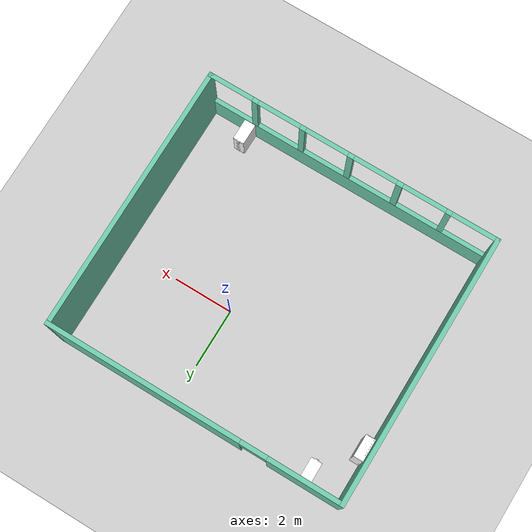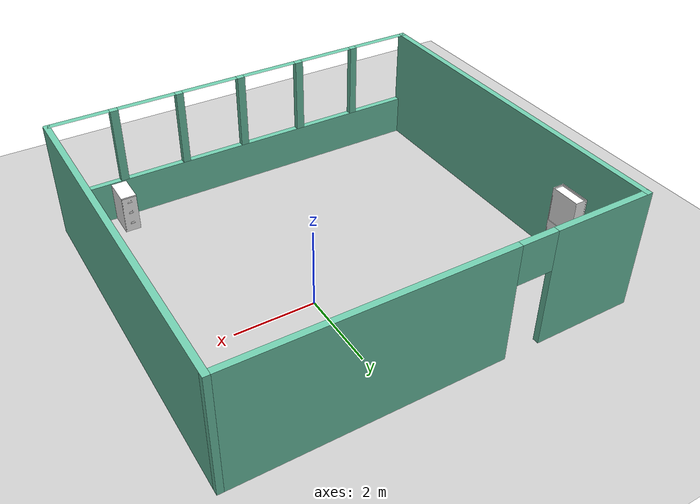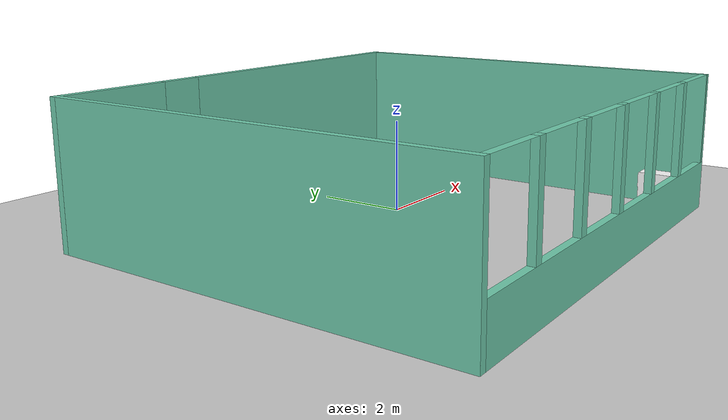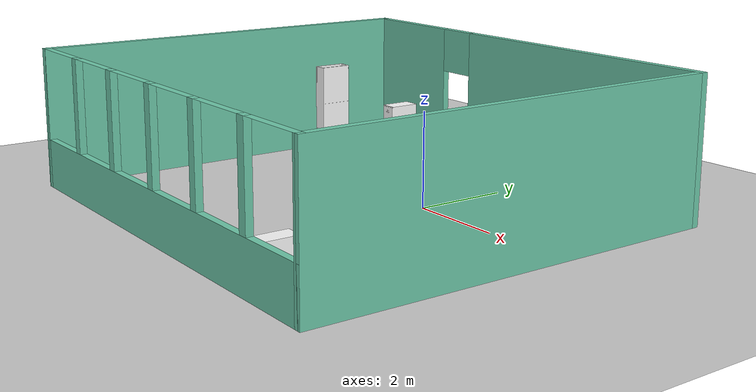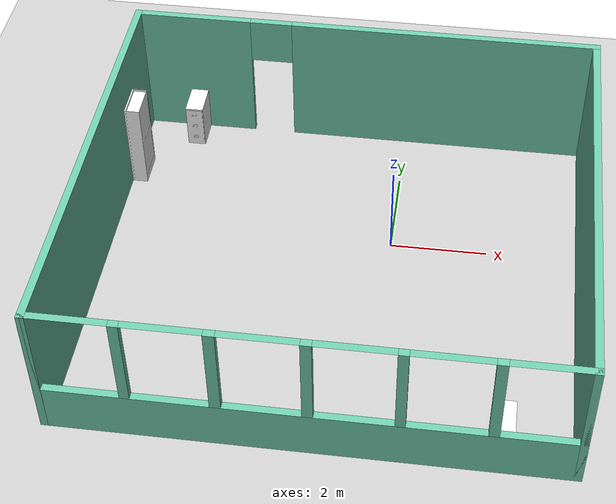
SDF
<sdf version="1.6">
 <world name="default">
  <light name="sun" type="directional">
   <pose>0 0 10 0 -0 0</pose>
   <diffuse>0.8 0.8 0.8 1</diffuse>
   <specular>0.2 0.2 0.2 1</specular>
   <attenuation>
    <range>1000</range>
    <constant>0.9</constant>
    <linear>0.01</linear>
    <quadratic>0.001</quadratic>
   </attenuation>
   <direction>-0.5 0.1 -0.9</direction>
  </light>
  <model name="ground_plane">
   <static>1</static>
   <link name="link">
    <collision name="collision">
     <geometry><plane><normal>0 0 1</normal><size>100 100</size></plane></geometry>
     <surface><friction><ode><mu>100</mu><mu2>50</mu2></ode></friction></surface>
    </collision>
    <visual name="visual">
     <cast_shadows>0</cast_shadows>
     <geometry><plane><normal>0 0 1</normal><size>100 100</size></plane></geometry>
     <material>
      <script><uri>file://media/materials/scripts/gazebo.material</uri><name>Gazebo/Grey</name></script>
     </material>
    </visual>
   </link>
  </model>
  <physics name="default_physics" default="0" type="ode">
   <max_step_size>0.001</max_step_size>
   <real_time_factor>1</real_time_factor>
   <real_time_update_rate>1000</real_time_update_rate>
   <gravity>0 0 -9.8</gravity>
   <magnetic_field>5.5645e-06 2.28758e-05 -4.23884e-05</magnetic_field>
  </physics>
  <scene><ambient>0.4 0.4 0.4 1</ambient><background>0.7 0.7 0.7 1</background><shadows>1</shadows></scene>
  <spherical_coordinates>
   <surface_model>EARTH_WGS84</surface_model>
   <latitude_deg>0</latitude_deg>
   <longitude_deg>0</longitude_deg>
   <elevation>0</elevation>
   <heading_deg>0</heading_deg>
  </spherical_coordinates>
  <model name="M327-Final">
   <pose>-1 -1 0 0 -0 0</pose>
   <link name="Wall_24">
    <collision name="Wall_24_Collision">
     <geometry><box><size>9 0.15 3</size></box></geometry>
     <pose>0 0 1.5 0 -0 0</pose>
    </collision>
    <visual name="Wall_24_Visual">
     <pose>0 0 1.5 0 -0 0</pose>
     <geometry><box><size>9 0.15 3</size></box></geometry>
     <material>
      <script><uri>file://media/materials/scripts/gazebo.material</uri><name>Gazebo/Grey</name></script>
      <ambient>0.435294 0.796078 0.67451 1</ambient>
     </material>
    </visual>
    <pose>-4.925 0 0 0 0 -1.5708</pose>
   </link>
   <link name="Wall_27">
    <pose>0 -4.425 0 0 -0 0</pose>
    <visual name="Wall_27_Visual_0">
     <pose>-4.92722 0 1.5 0 -0 0</pose>
     <geometry><box><size>0.14557 0.15 3</size></box></geometry>
     <material>
      <script><uri>file://media/materials/scripts/gazebo.material</uri><name>Gazebo/Grey</name></script>
      <ambient>0.435294 0.796078 0.67451 1</ambient>
     </material>
    </visual>
    <collision name="Wall_27_Collision_0">
     <geometry><box><size>0.14557 0.15 3</size></box></geometry>
     <pose>-4.92722 0 1.5 0 -0 0</pose>
    </collision>
    <visual name="Wall_27_Visual_1">
     <pose>0.072785 0 0.525 0 -0 0</pose>
     <geometry><box><size>9.85443 0.15 1.05</size></box></geometry>
     <material>
      <script><uri>file://media/materials/scripts/gazebo.material</uri><name>Gazebo/Grey</name></script>
      <ambient>0.435294 0.796078 0.67451 1</ambient>
     </material>
    </visual>
    <collision name="Wall_27_Collision_1">
     <geometry><box><size>9.85443 0.15 1.05</size></box></geometry>
     <pose>0.072785 0 0.525 0 -0 0</pose>
    </collision>
    <visual name="Wall_27_Visual_2">
     <pose>-3.29944 0 2.025 0 -0 0</pose>
     <geometry><box><size>0.189983 0.15 1.95</size></box></geometry>
     <material>
      <script><uri>file://media/materials/scripts/gazebo.material</uri><name>Gazebo/Grey</name></script>
      <ambient>0.435294 0.796078 0.67451 1</ambient>
     </material>
    </visual>
    <collision name="Wall_27_Collision_2">
     <geometry><box><size>0.189983 0.15 1.95</size></box></geometry>
     <pose>-3.29944 0 2.025 0 -0 0</pose>
    </collision>
    <visual name="Wall_27_Visual_3">
     <pose>-1.63892 0 2.025 0 -0 0</pose>
     <geometry><box><size>0.211044 0.15 1.95</size></box></geometry>
     <material>
      <script><uri>file://media/materials/scripts/gazebo.material</uri><name>Gazebo/Grey</name></script>
      <ambient>0.435294 0.796078 0.67451 1</ambient>
     </material>
    </visual>
    <collision name="Wall_27_Collision_3">
     <geometry><box><size>0.211044 0.15 1.95</size></box></geometry>
     <pose>-1.63892 0 2.025 0 -0 0</pose>
    </collision>
    <visual name="Wall_27_Visual_4">
     <pose>0.028009 0 2.025 0 -0 0</pose>
     <geometry><box><size>0.202823 0.15 1.95</size></box></geometry>
     <material>
      <script><uri>file://media/materials/scripts/gazebo.material</uri><name>Gazebo/Grey</name></script>
      <ambient>0.435294 0.796078 0.67451 1</ambient>
     </material>
    </visual>
    <collision name="Wall_27_Collision_4">
     <geometry><box><size>0.202823 0.15 1.95</size></box></geometry>
     <pose>0.028009 0 2.025 0 -0 0</pose>
    </collision>
    <visual name="Wall_27_Visual_5">
     <pose>1.68576 0 2.025 0 -0 0</pose>
     <geometry><box><size>0.192684 0.15 1.95</size></box></geometry>
     <material>
      <script><uri>file://media/materials/scripts/gazebo.material</uri><name>Gazebo/Grey</name></script>
      <ambient>0.435294 0.796078 0.67451 1</ambient>
     </material>
    </visual>
    <collision name="Wall_27_Collision_5">
     <geometry><box><size>0.192684 0.15 1.95</size></box></geometry>
     <pose>1.68576 0 2.025 0 -0 0</pose>
    </collision>
    <visual name="Wall_27_Visual_6">
     <pose>3.34352 0 2.025 0 -0 0</pose>
     <geometry><box><size>0.202823 0.15 1.95</size></box></geometry>
     <material>
      <script><uri>file://media/materials/scripts/gazebo.material</uri><name>Gazebo/Grey</name></script>
      <ambient>0.435294 0.796078 0.67451 1</ambient>
     </material>
    </visual>
    <collision name="Wall_27_Collision_6">
     <geometry><box><size>0.202823 0.15 1.95</size></box></geometry>
     <pose>3.34352 0 2.025 0 -0 0</pose>
    </collision>
    <visual name="Wall_27_Visual_7">
     <pose>4.95246 0 2.025 0 -0 0</pose>
     <geometry><box><size>0.095072 0.15 1.95</size></box></geometry>
     <material>
      <script><uri>file://media/materials/scripts/gazebo.material</uri><name>Gazebo/Grey</name></script>
      <ambient>0.435294 0.796078 0.67451 1</ambient>
     </material>
    </visual>
    <collision name="Wall_27_Collision_7">
     <geometry><box><size>0.095072 0.15 1.95</size></box></geometry>
     <pose>4.95246 0 2.025 0 -0 0</pose>
    </collision>
    <visual name="Wall_27_Visual_8">
     <pose>-4.12443 0 3 0 -0 0</pose>
     <geometry><box><size>1.46 0.15 0</size></box></geometry>
     <material>
      <script><uri>file://media/materials/scripts/gazebo.material</uri><name>Gazebo/Grey</name></script>
      <ambient>0.435294 0.796078 0.67451 1</ambient>
     </material>
    </visual>
    <collision name="Wall_27_Collision_8">
     <geometry><box><size>1.46 0.15 0</size></box></geometry>
     <pose>-4.12443 0 3 0 -0 0</pose>
    </collision>
    <visual name="Wall_27_Visual_9">
     <pose>-2.47445 0 3 0 -0 0</pose>
     <geometry><box><size>1.46 0.15 0</size></box></geometry>
     <material>
      <script><uri>file://media/materials/scripts/gazebo.material</uri><name>Gazebo/Grey</name></script>
      <ambient>0.435294 0.796078 0.67451 1</ambient>
     </material>
    </visual>
    <collision name="Wall_27_Collision_9">
     <geometry><box><size>1.46 0.15 0</size></box></geometry>
     <pose>-2.47445 0 3 0 -0 0</pose>
    </collision>
    <visual name="Wall_27_Visual_10">
     <pose>-0.803403 0 3 0 -0 0</pose>
     <geometry><box><size>1.46 0.15 0</size></box></geometry>
     <material>
      <script><uri>file://media/materials/scripts/gazebo.material</uri><name>Gazebo/Grey</name></script>
      <ambient>0.435294 0.796078 0.67451 1</ambient>
     </material>
    </visual>
    <collision name="Wall_27_Collision_10">
     <geometry><box><size>1.46 0.15 0</size></box></geometry>
     <pose>-0.803403 0 3 0 -0 0</pose>
    </collision>
    <visual name="Wall_27_Visual_11">
     <pose>0.85942 0 3 0 -0 0</pose>
     <geometry><box><size>1.46 0.15 0</size></box></geometry>
     <material>
      <script><uri>file://media/materials/scripts/gazebo.material</uri><name>Gazebo/Grey</name></script>
      <ambient>0.435294 0.796078 0.67451 1</ambient>
     </material>
    </visual>
    <collision name="Wall_27_Collision_11">
     <geometry><box><size>1.46 0.15 0</size></box></geometry>
     <pose>0.85942 0 3 0 -0 0</pose>
    </collision>
    <visual name="Wall_27_Visual_12">
     <pose>2.5121 0 3 0 -0 0</pose>
     <geometry><box><size>1.46 0.15 0</size></box></geometry>
     <material>
      <script><uri>file://media/materials/scripts/gazebo.material</uri><name>Gazebo/Grey</name></script>
      <ambient>0.435294 0.796078 0.67451 1</ambient>
     </material>
    </visual>
    <collision name="Wall_27_Collision_12">
     <geometry><box><size>1.46 0.15 0</size></box></geometry>
     <pose>2.5121 0 3 0 -0 0</pose>
    </collision>
    <visual name="Wall_27_Visual_13">
     <pose>4.17493 0 3 0 -0 0</pose>
     <geometry><box><size>1.46 0.15 0</size></box></geometry>
     <material>
      <script><uri>file://media/materials/scripts/gazebo.material</uri><name>Gazebo/Grey</name></script>
      <ambient>0.435294 0.796078 0.67451 1</ambient>
     </material>
    </visual>
    <collision name="Wall_27_Collision_13">
     <geometry><box><size>1.46 0.15 0</size></box></geometry>
     <pose>4.17493 0 3 0 -0 0</pose>
    </collision>
   </link>
   <link name="Wall_28">
    <collision name="Wall_28_Collision">
     <geometry><box><size>9 0.15 3</size></box></geometry>
     <pose>0 0 1.5 0 -0 0</pose>
    </collision>
    <visual name="Wall_28_Visual">
     <pose>0 0 1.5 0 -0 0</pose>
     <geometry><box><size>9 0.15 3</size></box></geometry>
     <material>
      <script><uri>file://media/materials/scripts/gazebo.material</uri><name>Gazebo/Grey</name></script>
      <ambient>0.435294 0.796078 0.67451 1</ambient>
     </material>
    </visual>
    <pose>4.925 0 0 0 -0 1.5708</pose>
   </link>
   <link name="Wall_29">
    <pose>0 4.425 0 0 -0 3.14159</pose>
    <visual name="Wall_29_Visual_0">
     <pose>-1.71908 0 1.5 0 -0 0</pose>
     <geometry><box><size>6.56184 0.15 3</size></box></geometry>
     <material>
      <script><uri>file://media/materials/scripts/gazebo.material</uri><name>Gazebo/Grey</name></script>
      <ambient>0.435294 0.796078 0.67451 1</ambient>
     </material>
    </visual>
    <collision name="Wall_29_Collision_0">
     <geometry><box><size>6.56184 0.15 3</size></box></geometry>
     <pose>-1.71908 0 1.5 0 -0 0</pose>
    </collision>
    <visual name="Wall_29_Visual_1">
     <pose>3.73092 0 1.5 0 -0 0</pose>
     <geometry><box><size>2.53816 0.15 3</size></box></geometry>
     <material>
      <script><uri>file://media/materials/scripts/gazebo.material</uri><name>Gazebo/Grey</name></script>
      <ambient>0.435294 0.796078 0.67451 1</ambient>
     </material>
    </visual>
    <collision name="Wall_29_Collision_1">
     <geometry><box><size>2.53816 0.15 3</size></box></geometry>
     <pose>3.73092 0 1.5 0 -0 0</pose>
    </collision>
    <visual name="Wall_29_Visual_2">
     <pose>2.01184 0 2.5 0 -0 0</pose>
     <geometry><box><size>0.9 0.15 1</size></box></geometry>
     <material>
      <script><uri>file://media/materials/scripts/gazebo.material</uri><name>Gazebo/Grey</name></script>
      <ambient>0.435294 0.796078 0.67451 1</ambient>
     </material>
    </visual>
    <collision name="Wall_29_Collision_2">
     <geometry><box><size>0.9 0.15 1</size></box></geometry>
     <pose>2.01184 0 2.5 0 -0 0</pose>
    </collision>
   </link>
   <static>1</static>
  </model>
  <model name="Cabinet_1">
   <static>1</static>
   <link name="link">
    <pose>0 0 0.04 0 -0 0</pose>
    <collision name="collision">
     <geometry><mesh><uri>model://Cabinet_1/meshes/Cabinet_1.dae</uri></mesh></geometry>
    </collision>
    <visual name="visual">
     <geometry><mesh><uri>model://Cabinet_1/meshes/Cabinet_1.dae</uri></mesh></geometry>
    </visual>
   </link>
   <pose>-4.68902 2.96414 0.481137 0 -0 0</pose>
  </model>
  <model name="Cabinet_2">
   <static>1</static>
   <link name="link">
    <pose>0 0 0.04 0 -0 0</pose>
    <collision name="collision">
     <geometry><mesh><uri>model://Cabinet_2/meshes/Cabinet_2.dae</uri></mesh></geometry>
    </collision>
    <visual name="visual">
     <geometry><mesh><uri>model://Cabinet_2/meshes/Cabinet_2.dae</uri></mesh></geometry>
    </visual>
   </link>
   <pose>-5.68678 1.66004 0.954194 0 0 -1.57053</pose>
  </model>
  <model name="Cabinet_1_0">
   <static>1</static>
   <link name="link">
    <pose>0 0 0.04 0 -0 0</pose>
    <collision name="collision">
     <geometry><mesh><uri>model://Cabinet_1/meshes/Cabinet_1.dae</uri></mesh></geometry>
    </collision>
    <visual name="visual">
     <geometry><mesh><uri>model://Cabinet_1/meshes/Cabinet_1.dae</uri></mesh></geometry>
    </visual>
   </link>
   <pose>2.53028 -4.96471 0.473182 0 -0 3.1391</pose>
  </model>
 </world>
</sdf>
